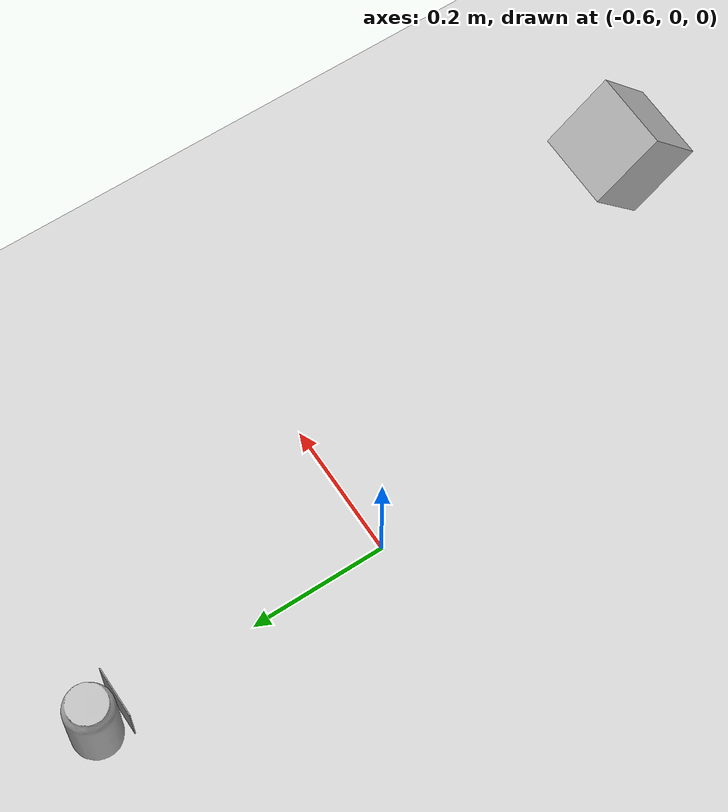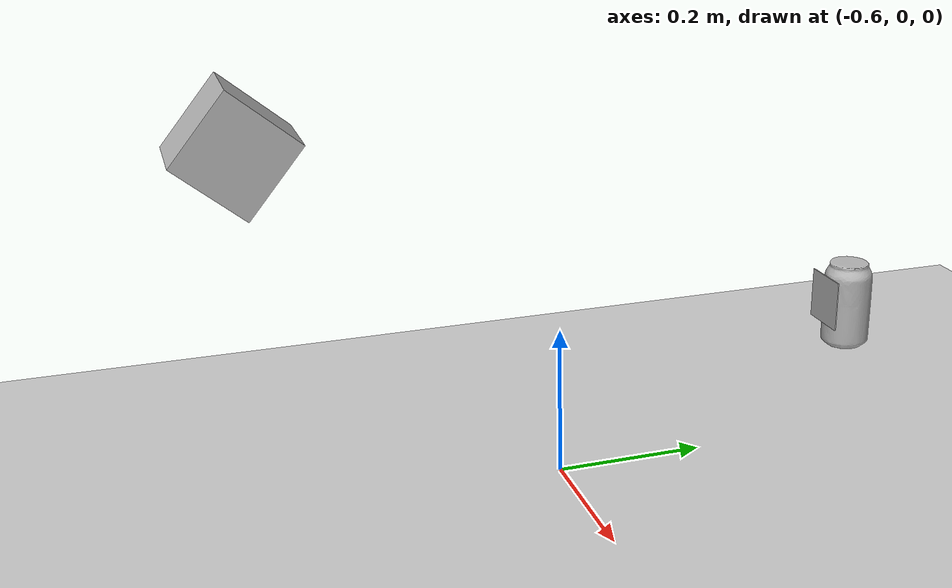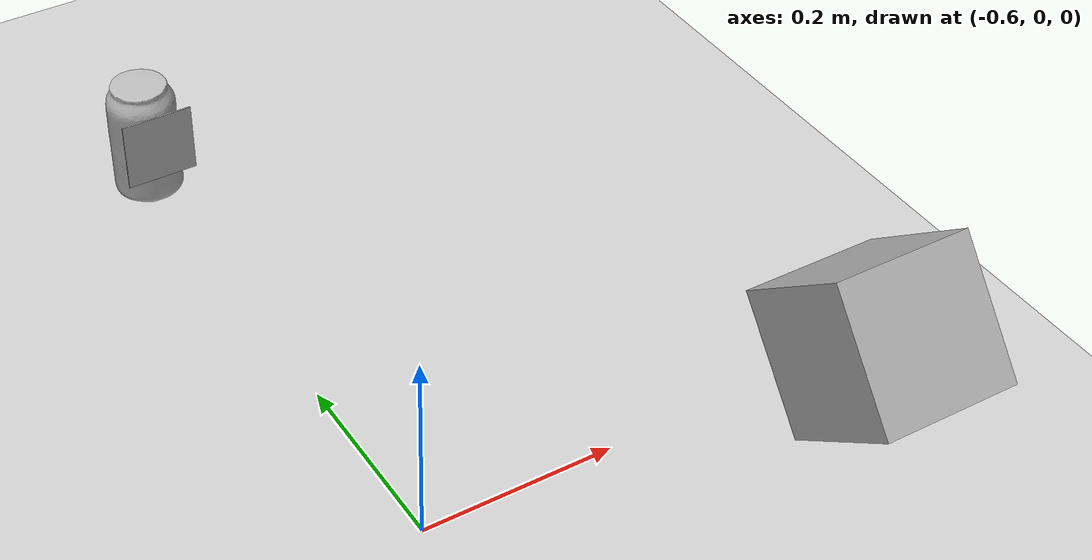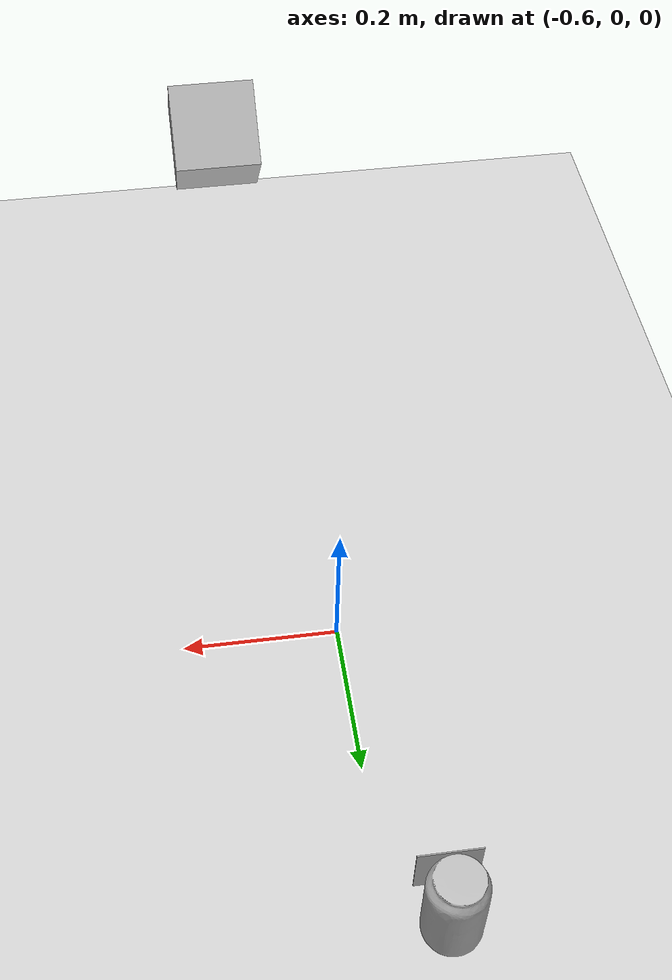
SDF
<?xml version="1.0" ?>
<sdf version="1.4">

  <world name="default">
    <include>
      <uri>model://ground_plane</uri>
    </include>

    <!-- Global light source -->
    <include>
      <uri>model://sun</uri>
    </include>

    <model name="coke_marker">
      <pose>-0.65 0.45 0.1 0 0 0</pose>
      <link name="coke_link">
      <inertial>
        <pose>0 0 0.06 0 0 0</pose>
        <mass>0.390</mass>
        <inertia>
          <ixx>0.00055575</ixx>
          <ixy>0</ixy>
          <ixz>0</ixz>
          <iyy>0.00055575</iyy>
          <iyz>0</iyz>
          <izz>0.0001755</izz>
        </inertia>
      </inertial>
      <collision name="collision">
        <pose>0.003937 0.0047244 -0.18 0 0 0</pose>
        <geometry>
          <mesh>
            <uri>model://coke_can/meshes/coke_can.dae</uri>
          </mesh>
        </geometry>
        <surface>
          <friction>
            <ode>
              <mu>1.0</mu>
              <mu2>1.0</mu2>
            </ode>
          </friction>
          <contact>
            <ode>
              <kp>10000000.0</kp>
              <kd>1.0</kd>
              <min_depth>0.001</min_depth>
              <max_vel>0.1</max_vel>
            </ode>
          </contact>
        </surface>
      </collision>
      <visual name="visual">
        <pose>0.003937 0.0047244 -0.18 0 0 0</pose>
        <geometry>
          <mesh>
            <uri>model://coke_can/meshes/coke_can.dae</uri>
          </mesh>
        </geometry>
      </visual>
    </link>

    <link name="marker_link">
      <pose>0.005 -0.041 0.22 0 0 1.57</pose>
      <inertial>
        <pose>0 0 0.06 0 0 0</pose>
        <mass>0.020</mass>
        <inertia>
          <ixx>0.00055575</ixx>
          <ixy>0</ixy>
          <ixz>0</ixz>
          <iyy>0.00055575</iyy>
          <iyz>0</iyz>
          <izz>0.0001755</izz>
        </inertia>
      </inertial>
      <collision name="collision">
        <pose>0.003937 0.0047244 -0.18 0 0 0</pose>
        <geometry>
          <mesh>
            <uri>model://marker3/meshes/Marker3.dae</uri>
            <scale>0.14 0.14 0.14</scale>
          </mesh>
        </geometry>
        <surface>
          <friction>
            <ode>
              <mu>1.0</mu>
              <mu2>1.0</mu2>
            </ode>
          </friction>
          <contact>
            <ode>
              <kp>10000000.0</kp>
              <kd>1.0</kd>
              <min_depth>0.001</min_depth>
              <max_vel>0.1</max_vel>
            </ode>
          </contact>
        </surface>
      </collision>
      <visual name="visual">
        <pose>0.003937 0.0047244 -0.18 0 0 0</pose>
        <geometry>
          <mesh>
            <uri>model://marker3/meshes/Marker3.dae</uri>
            <scale>0.14 0.14 0.14</scale>
          </mesh>
        </geometry>
      </visual>
    </link>

      <joint name="coke_marker_joint" type="fixed">
        <pose>-0.7 0.5 0.1 0 0 0</pose>
        <child>marker_link</child>
        <parent>coke_link</parent>
      </joint>
    </model>

    <!-- Focus camera on tall pendulum -->
    <gui fullscreen='0'>
      <camera name='user_camera'>
        <pose>4.927360 -4.376610 3.740080 0.000000 0.275643 2.356190</pose>
        <view_controller>orbit</view_controller>
      </camera>
    </gui>

  <model name='camera'>
      <static>true</static>
      <pose>-0.5 -0.4 0.5 0 0.69 1.57</pose>
      <link name='gazebo_camera_link'>
        <visual name='gazebo_camera_visual'>
          <geometry>
            <box>
              <size>0.1 0.1 0.1</size>
            </box>
          </geometry>
        </visual>
        <sensor name="rgb_camera" type="camera">
          <camera>
            <save enabled="false"></save>
            <horizontal_fov>1.047</horizontal_fov>
            <image>
              <width>640</width>
              <height>480</height>
            </image>
            <clip>
              <near>0.1</near>
              <far>100</far>
            </clip>
            <noise>
              <type>gaussian</type>
              <mean>0.0</mean>
              <stddev>0.007</stddev>
            </noise>
          </camera>
          <plugin name="camera_controller" filename="libgazebo_ros_camera.so">
            <alwaysOn>true</alwaysOn>
            <updateRate>0.0</updateRate>
            <cameraName>camera/rgb</cameraName>
            <imageTopicName>image_raw</imageTopicName>
            <cameraInfoTopicName>camera_info</cameraInfoTopicName>
            <frameName>camera_rgb_optical_frame</frameName>
            <hackBaseline>0.07</hackBaseline>
            <distortionK1>0.0</distortionK1>
            <distortionK2>0.0</distortionK2>
            <distortionK3>0.0</distortionK3>
            <distortionT1>0.0</distortionT1>
            <distortionT2>0.0</distortionT2>
          </plugin>
          <always_on>1</always_on>
          <update_rate>30</update_rate>
        </sensor>
      </link>
    </model>

  </world>
</sdf>
